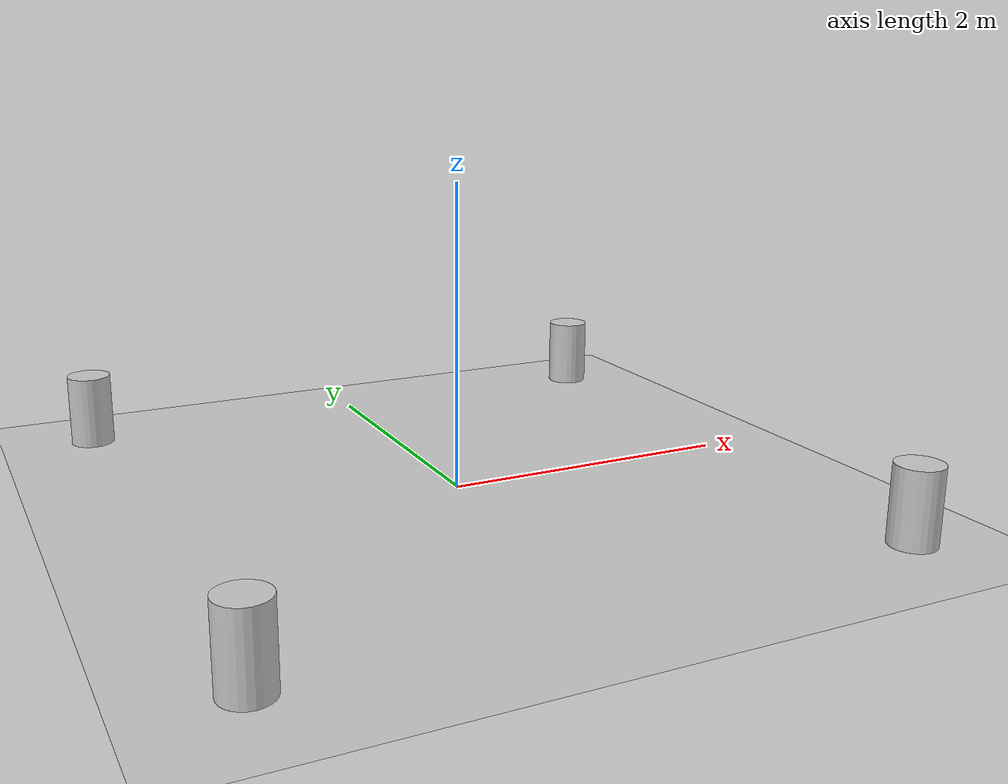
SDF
<sdf version="1.6">
 <world name="default">
  <plugin filename="gz-sim-physics-system" name="gz::sim::systems::Physics"/>
  <plugin filename="gz-sim-user-commands-system" name="gz::sim::systems::UserCommands"/>
  <plugin filename="gz-sim-scene-broadcaster-system" name="gz::sim::systems::SceneBroadcaster"/>
  <plugin filename="gz-sim-sensors-system" name="gz::sim::systems::Sensors">
   <render_engine>ogre2</render_engine>
  </plugin>
  <plugin filename="gz-sim-imu-system" name="gz::sim::systems::Imu"/>
  <plugin filename="gz-sim-contact-system" name="gz::sim::systems::Contact"/>
  <include><uri>https://fuel.gazebosim.org/1.0/OpenRobotics/models/Ground Plane</uri></include>
  <include><uri>https://fuel.gazebosim.org/1.0/OpenRobotics/models/Sun</uri></include>
  <scene><shadows>false</shadows><ambient>0.6 0.6 0.6 1</ambient><background>0.8 0.8 0.8 1</background></scene>
  <physics type="ode">
   <real_time_update_rate>1000.0</real_time_update_rate>
   <max_step_size>0.001</max_step_size>
   <real_time_factor>1</real_time_factor>
  </physics>
  <model name="drl_obstacle1">
   <pose>2.0 2.0 0 0 0 0</pose>
   <include><uri>model://turtlebot3_drl_world/obstacle</uri></include>
  </model>
  <model name="drl_obstacle2">
   <pose>-2.0 -2.0 0 0 0 0</pose>
   <include><uri>model://turtlebot3_drl_world/obstacle</uri></include>
  </model>
  <model name="drl_obstacle3">
   <pose>2.0 -2.0 0 0 0 0</pose>
   <include><uri>model://turtlebot3_drl_world/obstacle</uri></include>
  </model>
  <model name="drl_obstacle4">
   <pose>-2.0 2.0 0 0 0 0</pose>
   <include><uri>model://turtlebot3_drl_world/obstacle</uri></include>
  </model>
 </world>
</sdf>

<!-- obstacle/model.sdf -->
<sdf version='1.6'>
  <model name='obstacle'>
    <pose frame=''>0 0 0 0 0 0</pose>
    <link name='cylinder'>
      <collision name='collision'>
        <pose>0 0 0.25 0 0 0</pose>
        <geometry>
          <cylinder>
            <radius>0.15</radius>
            <length>0.5</length>
          </cylinder>
        </geometry>
      </collision>
      <visual name='visual'>
        <pose>0 0 0.25 0 0 0</pose>
        <geometry>
          <cylinder>
            <radius>0.15</radius>
            <length>0.5</length>
          </cylinder>
        </geometry>
        <material>
          <ambient>0.8 0.8 0.8 1</ambient>
          <diffuse>0.8 0.8 0.8 1</diffuse>
        </material>
      </visual>
    </link>
    <static>false</static>
  </model>
</sdf>
